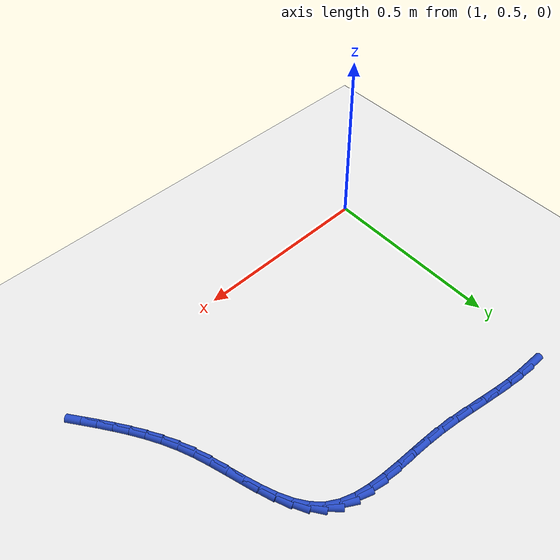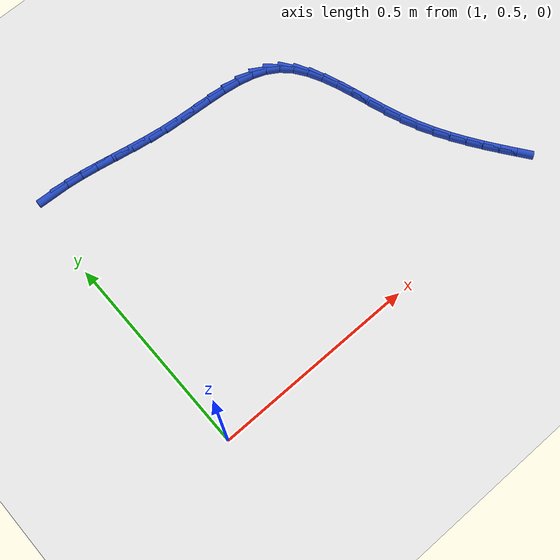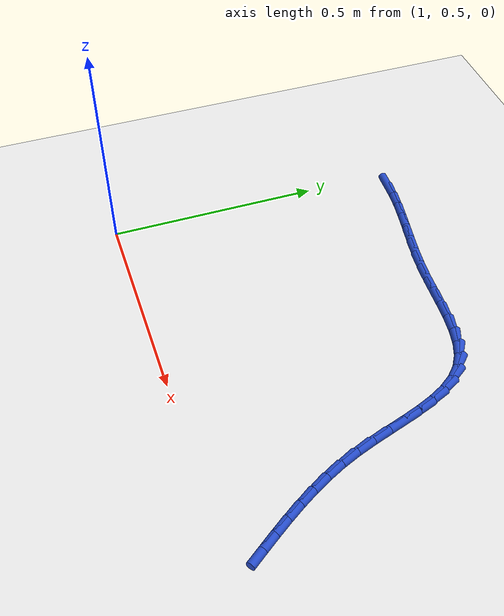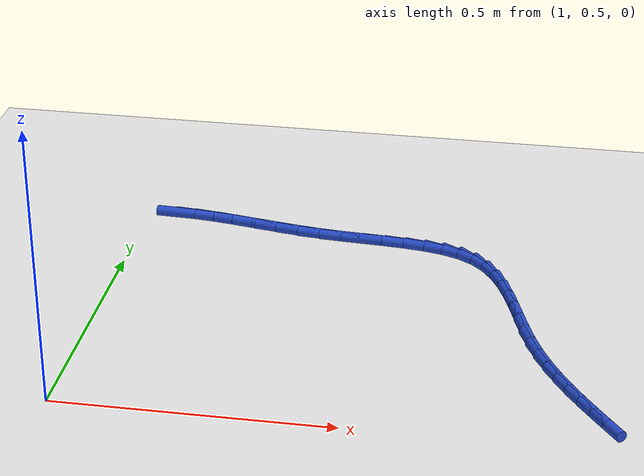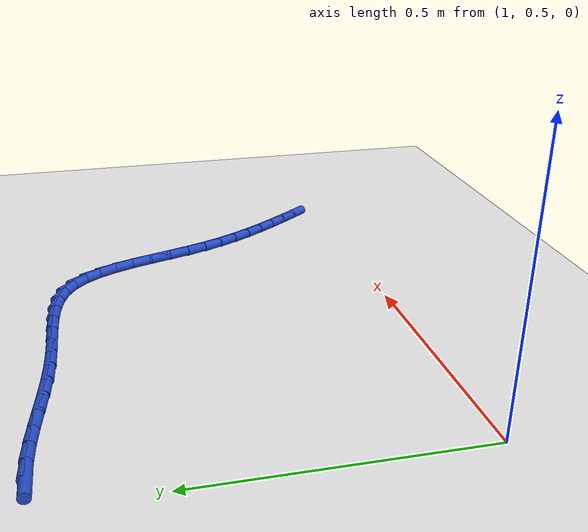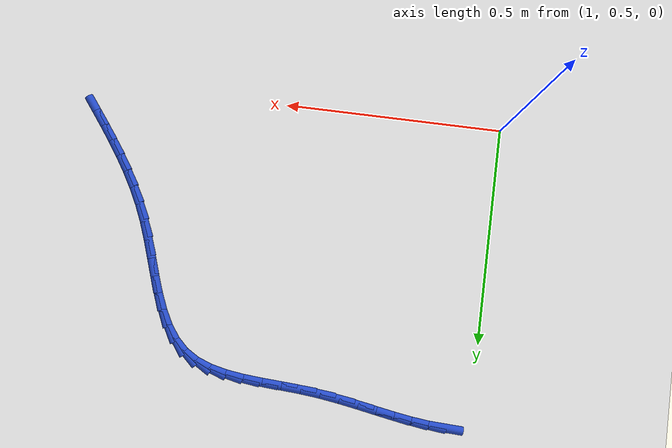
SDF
<sdf version="1.6">
 <world name="default">
  <model name="ground_plane">
   <static>1</static>
   <link name="link">
    <collision name="collision">
     <geometry><plane><normal>0 0 1</normal><size>100 100</size></plane></geometry>
     <surface><friction><ode><mu>100</mu><mu2>50</mu2></ode></friction></surface>
    </collision>
    <visual name="visual">
     <cast_shadows>0</cast_shadows>
     <geometry><plane><normal>0 0 1</normal><size>100 100</size></plane></geometry>
     <material>
      <script><uri>file://media/materials/scripts/gazebo.material</uri><name>Gazebo/WhiteGlow</name></script>
     </material>
    </visual>
   </link>
  </model>
  <model name="line">
   <link name="link_44">
    <pose>1.0570105745523117 1.1940228363633438 0.01 0 1.57 -0.04837696851748006</pose>
    <collision name="collision">
     <geometry><cylinder><radius>0.01</radius><length>0.08</length></cylinder></geometry>
    </collision>
    <visual name="visual">
     <material>
      <script><name>Gazebo/Blue</name><uri>file://media/materials/scripts/gazebo.material</uri></script>
     </material>
     <geometry><cylinder><radius>0.01</radius><length>0.08</length></cylinder></geometry>
    </visual>
   </link>
   <link name="link_45">
    <pose>1.0954017279803103 1.1921641385268869 0.01 0 1.57 -0.11292749679227933</pose>
    <collision name="collision">
     <geometry><cylinder><radius>0.01</radius><length>0.08</length></cylinder></geometry>
    </collision>
    <visual name="visual">
     <material>
      <script><name>Gazebo/Blue</name><uri>file://media/materials/scripts/gazebo.material</uri></script>
     </material>
     <geometry><cylinder><radius>0.01</radius><length>0.08</length></cylinder></geometry>
    </visual>
   </link>
   <link name="link_46">
    <pose>1.13529291336816 1.187640079244943 0.01 0 1.57 -0.15453414171731195</pose>
    <collision name="collision">
     <geometry><cylinder><radius>0.01</radius><length>0.08</length></cylinder></geometry>
    </collision>
    <visual name="visual">
     <material>
      <script><name>Gazebo/Blue</name><uri>file://media/materials/scripts/gazebo.material</uri></script>
     </material>
     <geometry><cylinder><radius>0.01</radius><length>0.08</length></cylinder></geometry>
    </visual>
   </link>
   <link name="link_47">
    <pose>1.176470242482141 1.1812256338575697 0.01 0 1.57 -0.1763713679223576</pose>
    <collision name="collision">
     <geometry><cylinder><radius>0.01</radius><length>0.08</length></cylinder></geometry>
    </collision>
    <visual name="visual">
     <material>
      <script><name>Gazebo/Blue</name><uri>file://media/materials/scripts/gazebo.material</uri></script>
     </material>
     <geometry><cylinder><radius>0.01</radius><length>0.08</length></cylinder></geometry>
    </visual>
   </link>
   <link name="link_48">
    <pose>1.2187198270885347 1.1736957777048223 0.01 0 1.57 -0.18058279782413014</pose>
    <collision name="collision">
     <geometry><cylinder><radius>0.01</radius><length>0.08</length></cylinder></geometry>
    </collision>
    <visual name="visual">
     <material>
      <script><name>Gazebo/Blue</name><uri>file://media/materials/scripts/gazebo.material</uri></script>
     </material>
     <geometry><cylinder><radius>0.01</radius><length>0.08</length></cylinder></geometry>
    </visual>
   </link>
   <link name="link_49">
    <pose>1.2618277789536232 1.165825486126757 0.01 0 1.57 -0.1683421394747414</pose>
    <collision name="collision">
     <geometry><cylinder><radius>0.01</radius><length>0.08</length></cylinder></geometry>
    </collision>
    <visual name="visual">
     <material>
      <script><name>Gazebo/Blue</name><uri>file://media/materials/scripts/gazebo.material</uri></script>
     </material>
     <geometry><cylinder><radius>0.01</radius><length>0.08</length></cylinder></geometry>
    </visual>
   </link>
   <link name="link_50">
    <pose>1.305580209843687 1.1583897344634313 0.01 0 1.57 -0.13999736501508236</pose>
    <collision name="collision">
     <geometry><cylinder><radius>0.01</radius><length>0.08</length></cylinder></geometry>
    </collision>
    <visual name="visual">
     <material>
      <script><name>Gazebo/Blue</name><uri>file://media/materials/scripts/gazebo.material</uri></script>
     </material>
     <geometry><cylinder><radius>0.01</radius><length>0.08</length></cylinder></geometry>
    </visual>
   </link>
   <link name="link_51">
    <pose>1.3497632315250065 1.1521634980549003 0.01 0 1.57 -0.09769345975118965</pose>
    <collision name="collision">
     <geometry><cylinder><radius>0.01</radius><length>0.08</length></cylinder></geometry>
    </collision>
    <visual name="visual">
     <material>
      <script><name>Gazebo/Blue</name><uri>file://media/materials/scripts/gazebo.material</uri></script>
     </material>
     <geometry><cylinder><radius>0.01</radius><length>0.08</length></cylinder></geometry>
    </visual>
   </link>
   <link name="link_52">
    <pose>1.3941388752463069 1.1478144432693274 0.01 0 1.57 -0.06612649248069756</pose>
    <collision name="collision">
     <geometry><cylinder><radius>0.01</radius><length>0.08</length></cylinder></geometry>
    </collision>
    <visual name="visual">
     <material>
      <script><name>Gazebo/Blue</name><uri>file://media/materials/scripts/gazebo.material</uri></script>
     </material>
     <geometry><cylinder><radius>0.01</radius><length>0.08</length></cylinder></geometry>
    </visual>
   </link>
   <link name="link_53">
    <pose>1.438218981985006 1.1448953243585869 0.01 0 1.57 -0.06012502095473905</pose>
    <collision name="collision">
     <geometry><cylinder><radius>0.01</radius><length>0.08</length></cylinder></geometry>
    </collision>
    <visual name="visual">
     <material>
      <script><name>Gazebo/Blue</name><uri>file://media/materials/scripts/gazebo.material</uri></script>
     </material>
     <geometry><cylinder><radius>0.01</radius><length>0.08</length></cylinder></geometry>
    </visual>
   </link>
   <link name="link_54">
    <pose>1.4813670661412666 1.14229791424507 0.01 0 1.57 -0.08141634280745495</pose>
    <collision name="collision">
     <geometry><cylinder><radius>0.01</radius><length>0.08</length></cylinder></geometry>
    </collision>
    <visual name="visual">
     <material>
      <script><name>Gazebo/Blue</name><uri>file://media/materials/scripts/gazebo.material</uri></script>
     </material>
     <geometry><cylinder><radius>0.01</radius><length>0.08</length></cylinder></geometry>
    </visual>
   </link>
   <link name="link_55">
    <pose>1.5229446966216837 1.1389053162320786 0.01 0 1.57 -0.13393681096609522</pose>
    <collision name="collision">
     <geometry><cylinder><radius>0.01</radius><length>0.08</length></cylinder></geometry>
    </collision>
    <visual name="visual">
     <material>
      <script><name>Gazebo/Blue</name><uri>file://media/materials/scripts/gazebo.material</uri></script>
     </material>
     <geometry><cylinder><radius>0.01</radius><length>0.08</length></cylinder></geometry>
    </visual>
   </link>
   <link name="link_56">
    <pose>1.5623134423328493 1.1336006336229134 0.01 0 1.57 -0.22434445334545514</pose>
    <collision name="collision">
     <geometry><cylinder><radius>0.01</radius><length>0.08</length></cylinder></geometry>
    </collision>
    <visual name="visual">
     <material>
      <script><name>Gazebo/Blue</name><uri>file://media/materials/scripts/gazebo.material</uri></script>
     </material>
     <geometry><cylinder><radius>0.01</radius><length>0.08</length></cylinder></geometry>
    </visual>
   </link>
   <link name="link_57">
    <pose>1.598834872181358 1.1252669697208761 0.01 0 1.57 -0.36118772963823204</pose>
    <collision name="collision">
     <geometry><cylinder><radius>0.01</radius><length>0.08</length></cylinder></geometry>
    </collision>
    <visual name="visual">
     <material>
      <script><name>Gazebo/Blue</name><uri>file://media/materials/scripts/gazebo.material</uri></script>
     </material>
     <geometry><cylinder><radius>0.01</radius><length>0.08</length></cylinder></geometry>
    </visual>
   </link>
   <link name="link_58">
    <pose>1.6318705550738042 1.1127874278292682 0.01 0 1.57 -0.5504152419705859</pose>
    <collision name="collision">
     <geometry><cylinder><radius>0.01</radius><length>0.08</length></cylinder></geometry>
    </collision>
    <visual name="visual">
     <material>
      <script><name>Gazebo/Blue</name><uri>file://media/materials/scripts/gazebo.material</uri></script>
     </material>
     <geometry><cylinder><radius>0.01</radius><length>0.08</length></cylinder></geometry>
    </visual>
   </link>
   <link name="link_59">
    <pose>1.66078205991678 1.0950451112513901 0.01 0 1.57 -0.7734066583830509</pose>
    <collision name="collision">
     <geometry><cylinder><radius>0.01</radius><length>0.08</length></cylinder></geometry>
    </collision>
    <visual name="visual">
     <material>
      <script><name>Gazebo/Blue</name><uri>file://media/materials/scripts/gazebo.material</uri></script>
     </material>
     <geometry><cylinder><radius>0.01</radius><length>0.08</length></cylinder></geometry>
    </visual>
   </link>
   <link name="link_60">
    <pose>1.685156433288459 1.0712484092607149 0.01 0 1.57 -0.9609246988969561</pose>
    <collision name="collision">
     <geometry><cylinder><radius>0.01</radius><length>0.08</length></cylinder></geometry>
    </collision>
    <visual name="visual">
     <material>
      <script><name>Gazebo/Blue</name><uri>file://media/materials/scripts/gazebo.material</uri></script>
     </material>
     <geometry><cylinder><radius>0.01</radius><length>0.08</length></cylinder></geometry>
    </visual>
   </link>
   <link name="link_61">
    <pose>1.705570062022927 1.0420329855154473 0.01 0 1.57 -1.0953885970075545</pose>
    <collision name="collision">
     <geometry><cylinder><radius>0.01</radius><length>0.08</length></cylinder></geometry>
    </collision>
    <visual name="visual">
     <material>
      <script><name>Gazebo/Blue</name><uri>file://media/materials/scripts/gazebo.material</uri></script>
     </material>
     <geometry><cylinder><radius>0.01</radius><length>0.08</length></cylinder></geometry>
    </visual>
   </link>
   <link name="link_62">
    <pose>1.7228706034601493 1.0084258527997005 0.01 0 1.57 -1.1845580967819753</pose>
    <collision name="collision">
     <geometry><cylinder><radius>0.01</radius><length>0.08</length></cylinder></geometry>
    </collision>
    <visual name="visual">
     <material>
      <script><name>Gazebo/Blue</name><uri>file://media/materials/scripts/gazebo.material</uri></script>
     </material>
     <geometry><cylinder><radius>0.01</radius><length>0.08</length></cylinder></geometry>
    </visual>
   </link>
   <link name="link_63">
    <pose>1.7379057221938086 0.9714540343621788 0.01 0 1.57 -1.2373195886929786</pose>
    <collision name="collision">
     <geometry><cylinder><radius>0.01</radius><length>0.08</length></cylinder></geometry>
    </collision>
    <visual name="visual">
     <material>
      <script><name>Gazebo/Blue</name><uri>file://media/materials/scripts/gazebo.material</uri></script>
     </material>
     <geometry><cylinder><radius>0.01</radius><length>0.08</length></cylinder></geometry>
    </visual>
   </link>
   <link name="link_64">
    <pose>1.751523082817585 0.9321445534515873 0.01 0 1.57 -1.2600033414593645</pose>
    <collision name="collision">
     <geometry><cylinder><radius>0.01</radius><length>0.08</length></cylinder></geometry>
    </collision>
    <visual name="visual">
     <material>
      <script><name>Gazebo/Blue</name><uri>file://media/materials/scripts/gazebo.material</uri></script>
     </material>
     <geometry><cylinder><radius>0.01</radius><length>0.08</length></cylinder></geometry>
    </visual>
   </link>
   <link name="link_65">
    <pose>1.7645703499251606 0.89152443331663 0.01 0 1.57 -1.2558763671386122</pose>
    <collision name="collision">
     <geometry><cylinder><radius>0.01</radius><length>0.08</length></cylinder></geometry>
    </collision>
    <visual name="visual">
     <material>
      <script><name>Gazebo/Blue</name><uri>file://media/materials/scripts/gazebo.material</uri></script>
     </material>
     <geometry><cylinder><radius>0.01</radius><length>0.08</length></cylinder></geometry>
    </visual>
   </link>
   <link name="link_66">
    <pose>1.7778951881102159 0.8506206972060109 0.01 0 1.57 -1.225409267560163</pose>
    <collision name="collision">
     <geometry><cylinder><radius>0.01</radius><length>0.08</length></cylinder></geometry>
    </collision>
    <visual name="visual">
     <material>
      <script><name>Gazebo/Blue</name><uri>file://media/materials/scripts/gazebo.material</uri></script>
     </material>
     <geometry><cylinder><radius>0.01</radius><length>0.08</length></cylinder></geometry>
    </visual>
   </link>
   <link name="link_67">
    <pose>1.7923452619664322 0.8104603683684354 0.01 0 1.57 -1.1698681735073404</pose>
    <collision name="collision">
     <geometry><cylinder><radius>0.01</radius><length>0.08</length></cylinder></geometry>
    </collision>
    <visual name="visual">
     <material>
      <script><name>Gazebo/Blue</name><uri>file://media/materials/scripts/gazebo.material</uri></script>
     </material>
     <geometry><cylinder><radius>0.01</radius><length>0.08</length></cylinder></geometry>
    </visual>
   </link>
   <link name="link_68">
    <pose>1.8086661027960687 0.7719576226477841 0.01 0 1.57 -1.1106709265701271</pose>
    <collision name="collision">
     <geometry><cylinder><radius>0.01</radius><length>0.08</length></cylinder></geometry>
    </collision>
    <visual name="visual">
     <material>
      <script><name>Gazebo/Blue</name><uri>file://media/materials/scripts/gazebo.material</uri></script>
     </material>
     <geometry><cylinder><radius>0.01</radius><length>0.08</length></cylinder></geometry>
    </visual>
   </link>
   <link name="link_69">
    <pose>1.8268733588061365 0.7352201856896173 0.01 0 1.57 -1.058772264885773</pose>
    <collision name="collision">
     <geometry><cylinder><radius>0.01</radius><length>0.08</length></cylinder></geometry>
    </collision>
    <visual name="visual">
     <material>
      <script><name>Gazebo/Blue</name><uri>file://media/materials/scripts/gazebo.material</uri></script>
     </material>
     <geometry><cylinder><radius>0.01</radius><length>0.08</length></cylinder></geometry>
    </visual>
   </link>
   <link name="link_70">
    <pose>1.8466650550471124 0.7000048402840624 0.01 0 1.57 -1.0151336223634433</pose>
    <collision name="collision">
     <geometry><cylinder><radius>0.01</radius><length>0.08</length></cylinder></geometry>
    </collision>
    <visual name="visual">
     <material>
      <script><name>Gazebo/Blue</name><uri>file://media/materials/scripts/gazebo.material</uri></script>
     </material>
     <geometry><cylinder><radius>0.01</radius><length>0.08</length></cylinder></geometry>
    </visual>
   </link>
   <link name="link_71">
    <pose>1.8677379112720736 0.6660669269939165 0.01 0 1.57 -0.9803995666466075</pose>
    <collision name="collision">
     <geometry><cylinder><radius>0.01</radius><length>0.08</length></cylinder></geometry>
    </collision>
    <visual name="visual">
     <material>
      <script><name>Gazebo/Blue</name><uri>file://media/materials/scripts/gazebo.material</uri></script>
     </material>
     <geometry><cylinder><radius>0.01</radius><length>0.08</length></cylinder></geometry>
    </visual>
   </link>
   <link name="link_72">
    <pose>1.889788647234098 0.6331617863819781 0.01 0 1.57 -0.955001847810761</pose>
    <collision name="collision">
     <geometry><cylinder><radius>0.01</radius><length>0.08</length></cylinder></geometry>
    </collision>
    <visual name="visual">
     <material>
      <script><name>Gazebo/Blue</name><uri>file://media/materials/scripts/gazebo.material</uri></script>
     </material>
     <geometry><cylinder><radius>0.01</radius><length>0.08</length></cylinder></geometry>
    </visual>
   </link>
   <link name="link_73">
    <pose>1.9125139826862616 0.6010447590110448 0.01 0 1.57 -0.9392286483356797</pose>
    <collision name="collision">
     <geometry><cylinder><radius>0.01</radius><length>0.08</length></cylinder></geometry>
    </collision>
    <visual name="visual">
     <material>
      <script><name>Gazebo/Blue</name><uri>file://media/materials/scripts/gazebo.material</uri></script>
     </material>
     <geometry><cylinder><radius>0.01</radius><length>0.08</length></cylinder></geometry>
    </visual>
   </link>
   <link name="link_74">
    <pose>1.9356106373816433 0.5694711854439144 0.01 0 1.57 -0.9332848872651573</pose>
    <collision name="collision">
     <geometry><cylinder><radius>0.01</radius><length>0.08</length></cylinder></geometry>
    </collision>
    <visual name="visual">
     <material>
      <script><name>Gazebo/Blue</name><uri>file://media/materials/scripts/gazebo.material</uri></script>
     </material>
     <geometry><cylinder><radius>0.01</radius><length>0.08</length></cylinder></geometry>
    </visual>
   </link>
  </model>
 </world>
</sdf>
